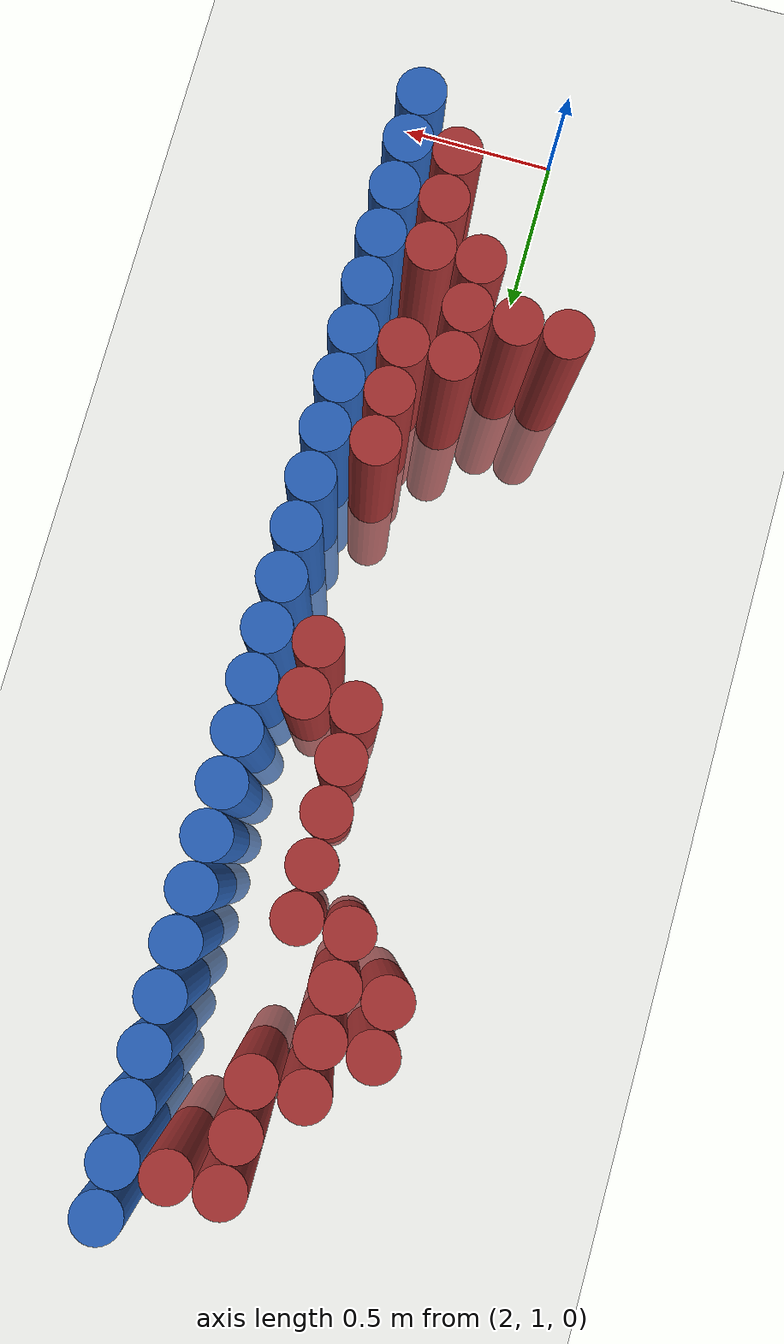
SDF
<sdf version="1.6">
 <world name="default">
  <model name="ground_plane">
   <static>1</static>
   <link name="link">
    <collision name="collision">
     <geometry><plane><normal>0 0 1</normal><size>100 100</size></plane></geometry>
     <surface><friction><ode><mu>100</mu><mu2>50</mu2></ode></friction></surface>
    </collision>
    <visual name="visual">
     <cast_shadows>0</cast_shadows>
     <geometry><plane><normal>0 0 1</normal><size>100 100</size></plane></geometry>
     <material>
      <script><uri>file://media/materials/scripts/gazebo.material</uri><name>Gazebo/Grey</name></script>
     </material>
    </visual>
   </link>
  </model>
  <model name="unit_cylinder_235">
   <static>1</static>
   <pose>1.825000 1.825000 0.000000 0.000000 0.000000 0.000000</pose>
   <link name="link">
    <inertial>
     <mass>1</mass>
     <inertia><ixx>0.145833</ixx><ixy>0</ixy><ixz>0</ixz><iyy>0.145833</iyy><iyz>0</iyz><izz>0.125</izz></inertia>
    </inertial>
    <collision name="collision">
     <geometry><cylinder><radius>0.075000</radius><length>1.5</length></cylinder></geometry>
    </collision>
    <visual name="visual">
     <geometry><cylinder><radius>0.075000</radius><length>1.5</length></cylinder></geometry>
     <material>
      <ambient>0.648000 0.192000 0.192000 1</ambient>
      <diffuse>0.648000 0.192000 0.192000 1</diffuse>
     </material>
     <material>
      <script><name>Gazebo/Grey</name><uri>file://media/materials/scripts/gazebo.material</uri></script>
     </material>
    </visual>
   </link>
  </model>
  <model name="unit_cylinder_236">
   <static>1</static>
   <pose>1.825000 3.775000 0.000000 0.000000 0.000000 0.000000</pose>
   <link name="link">
    <inertial>
     <mass>1</mass>
     <inertia><ixx>0.145833</ixx><ixy>0</ixy><ixz>0</ixz><iyy>0.145833</iyy><iyz>0</iyz><izz>0.125</izz></inertia>
    </inertial>
    <collision name="collision">
     <geometry><cylinder><radius>0.075000</radius><length>1.5</length></cylinder></geometry>
    </collision>
    <visual name="visual">
     <geometry><cylinder><radius>0.075000</radius><length>1.5</length></cylinder></geometry>
     <material>
      <ambient>0.648000 0.192000 0.192000 1</ambient>
      <diffuse>0.648000 0.192000 0.192000 1</diffuse>
     </material>
     <material>
      <script><name>Gazebo/Grey</name><uri>file://media/materials/scripts/gazebo.material</uri></script>
     </material>
    </visual>
   </link>
  </model>
  <model name="unit_cylinder_237">
   <static>1</static>
   <pose>1.825000 3.925000 0.000000 0.000000 0.000000 0.000000</pose>
   <link name="link">
    <inertial>
     <mass>1</mass>
     <inertia><ixx>0.145833</ixx><ixy>0</ixy><ixz>0</ixz><iyy>0.145833</iyy><iyz>0</iyz><izz>0.125</izz></inertia>
    </inertial>
    <collision name="collision">
     <geometry><cylinder><radius>0.075000</radius><length>1.5</length></cylinder></geometry>
    </collision>
    <visual name="visual">
     <geometry><cylinder><radius>0.075000</radius><length>1.5</length></cylinder></geometry>
     <material>
      <ambient>0.648000 0.192000 0.192000 1</ambient>
      <diffuse>0.648000 0.192000 0.192000 1</diffuse>
     </material>
     <material>
      <script><name>Gazebo/Grey</name><uri>file://media/materials/scripts/gazebo.material</uri></script>
     </material>
    </visual>
   </link>
  </model>
  <model name="unit_cylinder_242">
   <static>1</static>
   <pose>1.975000 1.825000 0.000000 0.000000 0.000000 0.000000</pose>
   <link name="link">
    <inertial>
     <mass>1</mass>
     <inertia><ixx>0.145833</ixx><ixy>0</ixy><ixz>0</ixz><iyy>0.145833</iyy><iyz>0</iyz><izz>0.125</izz></inertia>
    </inertial>
    <collision name="collision">
     <geometry><cylinder><radius>0.075000</radius><length>1.5</length></cylinder></geometry>
    </collision>
    <visual name="visual">
     <geometry><cylinder><radius>0.075000</radius><length>1.5</length></cylinder></geometry>
     <material>
      <ambient>0.648000 0.192000 0.192000 1</ambient>
      <diffuse>0.648000 0.192000 0.192000 1</diffuse>
     </material>
     <material>
      <script><name>Gazebo/Grey</name><uri>file://media/materials/scripts/gazebo.material</uri></script>
     </material>
    </visual>
   </link>
  </model>
  <model name="unit_cylinder_243">
   <static>1</static>
   <pose>1.975000 3.625000 0.000000 0.000000 0.000000 0.000000</pose>
   <link name="link">
    <inertial>
     <mass>1</mass>
     <inertia><ixx>0.145833</ixx><ixy>0</ixy><ixz>0</ixz><iyy>0.145833</iyy><iyz>0</iyz><izz>0.125</izz></inertia>
    </inertial>
    <collision name="collision">
     <geometry><cylinder><radius>0.075000</radius><length>1.5</length></cylinder></geometry>
    </collision>
    <visual name="visual">
     <geometry><cylinder><radius>0.075000</radius><length>1.5</length></cylinder></geometry>
     <material>
      <ambient>0.648000 0.192000 0.192000 1</ambient>
      <diffuse>0.648000 0.192000 0.192000 1</diffuse>
     </material>
     <material>
      <script><name>Gazebo/Grey</name><uri>file://media/materials/scripts/gazebo.material</uri></script>
     </material>
    </visual>
   </link>
  </model>
  <model name="unit_cylinder_244">
   <static>1</static>
   <pose>1.975000 3.775000 0.000000 0.000000 0.000000 0.000000</pose>
   <link name="link">
    <inertial>
     <mass>1</mass>
     <inertia><ixx>0.145833</ixx><ixy>0</ixy><ixz>0</ixz><iyy>0.145833</iyy><iyz>0</iyz><izz>0.125</izz></inertia>
    </inertial>
    <collision name="collision">
     <geometry><cylinder><radius>0.075000</radius><length>1.5</length></cylinder></geometry>
    </collision>
    <visual name="visual">
     <geometry><cylinder><radius>0.075000</radius><length>1.5</length></cylinder></geometry>
     <material>
      <ambient>0.648000 0.192000 0.192000 1</ambient>
      <diffuse>0.648000 0.192000 0.192000 1</diffuse>
     </material>
     <material>
      <script><name>Gazebo/Grey</name><uri>file://media/materials/scripts/gazebo.material</uri></script>
     </material>
    </visual>
   </link>
  </model>
  <model name="unit_cylinder_245">
   <static>1</static>
   <pose>1.975000 3.925000 0.000000 0.000000 0.000000 0.000000</pose>
   <link name="link">
    <inertial>
     <mass>1</mass>
     <inertia><ixx>0.145833</ixx><ixy>0</ixy><ixz>0</ixz><iyy>0.145833</iyy><iyz>0</iyz><izz>0.125</izz></inertia>
    </inertial>
    <collision name="collision">
     <geometry><cylinder><radius>0.075000</radius><length>1.5</length></cylinder></geometry>
    </collision>
    <visual name="visual">
     <geometry><cylinder><radius>0.075000</radius><length>1.5</length></cylinder></geometry>
     <material>
      <ambient>0.648000 0.192000 0.192000 1</ambient>
      <diffuse>0.648000 0.192000 0.192000 1</diffuse>
     </material>
     <material>
      <script><name>Gazebo/Grey</name><uri>file://media/materials/scripts/gazebo.material</uri></script>
     </material>
    </visual>
   </link>
  </model>
  <model name="unit_cylinder_246">
   <static>1</static>
   <pose>1.975000 4.075000 0.000000 0.000000 0.000000 0.000000</pose>
   <link name="link">
    <inertial>
     <mass>1</mass>
     <inertia><ixx>0.145833</ixx><ixy>0</ixy><ixz>0</ixz><iyy>0.145833</iyy><iyz>0</iyz><izz>0.125</izz></inertia>
    </inertial>
    <collision name="collision">
     <geometry><cylinder><radius>0.075000</radius><length>1.5</length></cylinder></geometry>
    </collision>
    <visual name="visual">
     <geometry><cylinder><radius>0.075000</radius><length>1.5</length></cylinder></geometry>
     <material>
      <ambient>0.648000 0.192000 0.192000 1</ambient>
      <diffuse>0.648000 0.192000 0.192000 1</diffuse>
     </material>
     <material>
      <script><name>Gazebo/Grey</name><uri>file://media/materials/scripts/gazebo.material</uri></script>
     </material>
    </visual>
   </link>
  </model>
  <model name="unit_cylinder_250">
   <static>1</static>
   <pose>2.125000 1.675000 0.000000 0.000000 0.000000 0.000000</pose>
   <link name="link">
    <inertial>
     <mass>1</mass>
     <inertia><ixx>0.145833</ixx><ixy>0</ixy><ixz>0</ixz><iyy>0.145833</iyy><iyz>0</iyz><izz>0.125</izz></inertia>
    </inertial>
    <collision name="collision">
     <geometry><cylinder><radius>0.075000</radius><length>1.5</length></cylinder></geometry>
    </collision>
    <visual name="visual">
     <geometry><cylinder><radius>0.075000</radius><length>1.5</length></cylinder></geometry>
     <material>
      <ambient>0.648000 0.192000 0.192000 1</ambient>
      <diffuse>0.648000 0.192000 0.192000 1</diffuse>
     </material>
     <material>
      <script><name>Gazebo/Grey</name><uri>file://media/materials/scripts/gazebo.material</uri></script>
     </material>
    </visual>
   </link>
  </model>
  <model name="unit_cylinder_251">
   <static>1</static>
   <pose>2.125000 1.825000 0.000000 0.000000 0.000000 0.000000</pose>
   <link name="link">
    <inertial>
     <mass>1</mass>
     <inertia><ixx>0.145833</ixx><ixy>0</ixy><ixz>0</ixz><iyy>0.145833</iyy><iyz>0</iyz><izz>0.125</izz></inertia>
    </inertial>
    <collision name="collision">
     <geometry><cylinder><radius>0.075000</radius><length>1.5</length></cylinder></geometry>
    </collision>
    <visual name="visual">
     <geometry><cylinder><radius>0.075000</radius><length>1.5</length></cylinder></geometry>
     <material>
      <ambient>0.648000 0.192000 0.192000 1</ambient>
      <diffuse>0.648000 0.192000 0.192000 1</diffuse>
     </material>
     <material>
      <script><name>Gazebo/Grey</name><uri>file://media/materials/scripts/gazebo.material</uri></script>
     </material>
    </visual>
   </link>
  </model>
  <model name="unit_cylinder_252">
   <static>1</static>
   <pose>2.125000 1.975000 0.000000 0.000000 0.000000 0.000000</pose>
   <link name="link">
    <inertial>
     <mass>1</mass>
     <inertia><ixx>0.145833</ixx><ixy>0</ixy><ixz>0</ixz><iyy>0.145833</iyy><iyz>0</iyz><izz>0.125</izz></inertia>
    </inertial>
    <collision name="collision">
     <geometry><cylinder><radius>0.075000</radius><length>1.5</length></cylinder></geometry>
    </collision>
    <visual name="visual">
     <geometry><cylinder><radius>0.075000</radius><length>1.5</length></cylinder></geometry>
     <material>
      <ambient>0.648000 0.192000 0.192000 1</ambient>
      <diffuse>0.648000 0.192000 0.192000 1</diffuse>
     </material>
     <material>
      <script><name>Gazebo/Grey</name><uri>file://media/materials/scripts/gazebo.material</uri></script>
     </material>
    </visual>
   </link>
  </model>
  <model name="unit_cylinder_253">
   <static>1</static>
   <pose>2.125000 3.025000 0.000000 0.000000 0.000000 0.000000</pose>
   <link name="link">
    <inertial>
     <mass>1</mass>
     <inertia><ixx>0.145833</ixx><ixy>0</ixy><ixz>0</ixz><iyy>0.145833</iyy><iyz>0</iyz><izz>0.125</izz></inertia>
    </inertial>
    <collision name="collision">
     <geometry><cylinder><radius>0.075000</radius><length>1.5</length></cylinder></geometry>
    </collision>
    <visual name="visual">
     <geometry><cylinder><radius>0.075000</radius><length>1.5</length></cylinder></geometry>
     <material>
      <ambient>0.648000 0.192000 0.192000 1</ambient>
      <diffuse>0.648000 0.192000 0.192000 1</diffuse>
     </material>
     <material>
      <script><name>Gazebo/Grey</name><uri>file://media/materials/scripts/gazebo.material</uri></script>
     </material>
    </visual>
   </link>
  </model>
  <model name="unit_cylinder_254">
   <static>1</static>
   <pose>2.125000 3.175000 0.000000 0.000000 0.000000 0.000000</pose>
   <link name="link">
    <inertial>
     <mass>1</mass>
     <inertia><ixx>0.145833</ixx><ixy>0</ixy><ixz>0</ixz><iyy>0.145833</iyy><iyz>0</iyz><izz>0.125</izz></inertia>
    </inertial>
    <collision name="collision">
     <geometry><cylinder><radius>0.075000</radius><length>1.5</length></cylinder></geometry>
    </collision>
    <visual name="visual">
     <geometry><cylinder><radius>0.075000</radius><length>1.5</length></cylinder></geometry>
     <material>
      <ambient>0.648000 0.192000 0.192000 1</ambient>
      <diffuse>0.648000 0.192000 0.192000 1</diffuse>
     </material>
     <material>
      <script><name>Gazebo/Grey</name><uri>file://media/materials/scripts/gazebo.material</uri></script>
     </material>
    </visual>
   </link>
  </model>
  <model name="unit_cylinder_255">
   <static>1</static>
   <pose>2.125000 3.325000 0.000000 0.000000 0.000000 0.000000</pose>
   <link name="link">
    <inertial>
     <mass>1</mass>
     <inertia><ixx>0.145833</ixx><ixy>0</ixy><ixz>0</ixz><iyy>0.145833</iyy><iyz>0</iyz><izz>0.125</izz></inertia>
    </inertial>
    <collision name="collision">
     <geometry><cylinder><radius>0.075000</radius><length>1.5</length></cylinder></geometry>
    </collision>
    <visual name="visual">
     <geometry><cylinder><radius>0.075000</radius><length>1.5</length></cylinder></geometry>
     <material>
      <ambient>0.648000 0.192000 0.192000 1</ambient>
      <diffuse>0.648000 0.192000 0.192000 1</diffuse>
     </material>
     <material>
      <script><name>Gazebo/Grey</name><uri>file://media/materials/scripts/gazebo.material</uri></script>
     </material>
    </visual>
   </link>
  </model>
  <model name="unit_cylinder_256">
   <static>1</static>
   <pose>2.125000 3.475000 0.000000 0.000000 0.000000 0.000000</pose>
   <link name="link">
    <inertial>
     <mass>1</mass>
     <inertia><ixx>0.145833</ixx><ixy>0</ixy><ixz>0</ixz><iyy>0.145833</iyy><iyz>0</iyz><izz>0.125</izz></inertia>
    </inertial>
    <collision name="collision">
     <geometry><cylinder><radius>0.075000</radius><length>1.5</length></cylinder></geometry>
    </collision>
    <visual name="visual">
     <geometry><cylinder><radius>0.075000</radius><length>1.5</length></cylinder></geometry>
     <material>
      <ambient>0.648000 0.192000 0.192000 1</ambient>
      <diffuse>0.648000 0.192000 0.192000 1</diffuse>
     </material>
     <material>
      <script><name>Gazebo/Grey</name><uri>file://media/materials/scripts/gazebo.material</uri></script>
     </material>
    </visual>
   </link>
  </model>
  <model name="unit_cylinder_257">
   <static>1</static>
   <pose>2.125000 3.625000 0.000000 0.000000 0.000000 0.000000</pose>
   <link name="link">
    <inertial>
     <mass>1</mass>
     <inertia><ixx>0.145833</ixx><ixy>0</ixy><ixz>0</ixz><iyy>0.145833</iyy><iyz>0</iyz><izz>0.125</izz></inertia>
    </inertial>
    <collision name="collision">
     <geometry><cylinder><radius>0.075000</radius><length>1.5</length></cylinder></geometry>
    </collision>
    <visual name="visual">
     <geometry><cylinder><radius>0.075000</radius><length>1.5</length></cylinder></geometry>
     <material>
      <ambient>0.648000 0.192000 0.192000 1</ambient>
      <diffuse>0.648000 0.192000 0.192000 1</diffuse>
     </material>
     <material>
      <script><name>Gazebo/Grey</name><uri>file://media/materials/scripts/gazebo.material</uri></script>
     </material>
    </visual>
   </link>
  </model>
  <model name="unit_cylinder_258">
   <static>1</static>
   <pose>2.125000 4.075000 0.000000 0.000000 0.000000 0.000000</pose>
   <link name="link">
    <inertial>
     <mass>1</mass>
     <inertia><ixx>0.145833</ixx><ixy>0</ixy><ixz>0</ixz><iyy>0.145833</iyy><iyz>0</iyz><izz>0.125</izz></inertia>
    </inertial>
    <collision name="collision">
     <geometry><cylinder><radius>0.075000</radius><length>1.5</length></cylinder></geometry>
    </collision>
    <visual name="visual">
     <geometry><cylinder><radius>0.075000</radius><length>1.5</length></cylinder></geometry>
     <material>
      <ambient>0.648000 0.192000 0.192000 1</ambient>
      <diffuse>0.648000 0.192000 0.192000 1</diffuse>
     </material>
     <material>
      <script><name>Gazebo/Grey</name><uri>file://media/materials/scripts/gazebo.material</uri></script>
     </material>
    </visual>
   </link>
  </model>
  <model name="unit_cylinder_259">
   <static>1</static>
   <pose>2.125000 4.225000 0.000000 0.000000 0.000000 0.000000</pose>
   <link name="link">
    <inertial>
     <mass>1</mass>
     <inertia><ixx>0.145833</ixx><ixy>0</ixy><ixz>0</ixz><iyy>0.145833</iyy><iyz>0</iyz><izz>0.125</izz></inertia>
    </inertial>
    <collision name="collision">
     <geometry><cylinder><radius>0.075000</radius><length>1.5</length></cylinder></geometry>
    </collision>
    <visual name="visual">
     <geometry><cylinder><radius>0.075000</radius><length>1.5</length></cylinder></geometry>
     <material>
      <ambient>0.648000 0.192000 0.192000 1</ambient>
      <diffuse>0.648000 0.192000 0.192000 1</diffuse>
     </material>
     <material>
      <script><name>Gazebo/Grey</name><uri>file://media/materials/scripts/gazebo.material</uri></script>
     </material>
    </visual>
   </link>
  </model>
  <model name="unit_cylinder_260">
   <static>1</static>
   <pose>2.125000 4.375000 0.000000 0.000000 0.000000 0.000000</pose>
   <link name="link">
    <inertial>
     <mass>1</mass>
     <inertia><ixx>0.145833</ixx><ixy>0</ixy><ixz>0</ixz><iyy>0.145833</iyy><iyz>0</iyz><izz>0.125</izz></inertia>
    </inertial>
    <collision name="collision">
     <geometry><cylinder><radius>0.075000</radius><length>1.5</length></cylinder></geometry>
    </collision>
    <visual name="visual">
     <geometry><cylinder><radius>0.075000</radius><length>1.5</length></cylinder></geometry>
     <material>
      <ambient>0.648000 0.192000 0.192000 1</ambient>
      <diffuse>0.648000 0.192000 0.192000 1</diffuse>
     </material>
     <material>
      <script><name>Gazebo/Grey</name><uri>file://media/materials/scripts/gazebo.material</uri></script>
     </material>
    </visual>
   </link>
  </model>
  <model name="unit_cylinder_265">
   <static>1</static>
   <pose>2.275000 1.375000 0.000000 0.000000 0.000000 0.000000</pose>
   <link name="link">
    <inertial>
     <mass>1</mass>
     <inertia><ixx>0.145833</ixx><ixy>0</ixy><ixz>0</ixz><iyy>0.145833</iyy><iyz>0</iyz><izz>0.125</izz></inertia>
    </inertial>
    <collision name="collision">
     <geometry><cylinder><radius>0.075000</radius><length>1.5</length></cylinder></geometry>
    </collision>
    <visual name="visual">
     <geometry><cylinder><radius>0.075000</radius><length>1.5</length></cylinder></geometry>
     <material>
      <ambient>0.648000 0.192000 0.192000 1</ambient>
      <diffuse>0.648000 0.192000 0.192000 1</diffuse>
     </material>
     <material>
      <script><name>Gazebo/Grey</name><uri>file://media/materials/scripts/gazebo.material</uri></script>
     </material>
    </visual>
   </link>
  </model>
  <model name="unit_cylinder_266">
   <static>1</static>
   <pose>2.275000 1.525000 0.000000 0.000000 0.000000 0.000000</pose>
   <link name="link">
    <inertial>
     <mass>1</mass>
     <inertia><ixx>0.145833</ixx><ixy>0</ixy><ixz>0</ixz><iyy>0.145833</iyy><iyz>0</iyz><izz>0.125</izz></inertia>
    </inertial>
    <collision name="collision">
     <geometry><cylinder><radius>0.075000</radius><length>1.5</length></cylinder></geometry>
    </collision>
    <visual name="visual">
     <geometry><cylinder><radius>0.075000</radius><length>1.5</length></cylinder></geometry>
     <material>
      <ambient>0.648000 0.192000 0.192000 1</ambient>
      <diffuse>0.648000 0.192000 0.192000 1</diffuse>
     </material>
     <material>
      <script><name>Gazebo/Grey</name><uri>file://media/materials/scripts/gazebo.material</uri></script>
     </material>
    </visual>
   </link>
  </model>
  <model name="unit_cylinder_267">
   <static>1</static>
   <pose>2.275000 1.675000 0.000000 0.000000 0.000000 0.000000</pose>
   <link name="link">
    <inertial>
     <mass>1</mass>
     <inertia><ixx>0.145833</ixx><ixy>0</ixy><ixz>0</ixz><iyy>0.145833</iyy><iyz>0</iyz><izz>0.125</izz></inertia>
    </inertial>
    <collision name="collision">
     <geometry><cylinder><radius>0.075000</radius><length>1.5</length></cylinder></geometry>
    </collision>
    <visual name="visual">
     <geometry><cylinder><radius>0.075000</radius><length>1.5</length></cylinder></geometry>
     <material>
      <ambient>0.648000 0.192000 0.192000 1</ambient>
      <diffuse>0.648000 0.192000 0.192000 1</diffuse>
     </material>
     <material>
      <script><name>Gazebo/Grey</name><uri>file://media/materials/scripts/gazebo.material</uri></script>
     </material>
    </visual>
   </link>
  </model>
  <model name="unit_cylinder_268">
   <static>1</static>
   <pose>2.275000 1.975000 0.000000 0.000000 0.000000 0.000000</pose>
   <link name="link">
    <inertial>
     <mass>1</mass>
     <inertia><ixx>0.145833</ixx><ixy>0</ixy><ixz>0</ixz><iyy>0.145833</iyy><iyz>0</iyz><izz>0.125</izz></inertia>
    </inertial>
    <collision name="collision">
     <geometry><cylinder><radius>0.075000</radius><length>1.5</length></cylinder></geometry>
    </collision>
    <visual name="visual">
     <geometry><cylinder><radius>0.075000</radius><length>1.5</length></cylinder></geometry>
     <material>
      <ambient>0.648000 0.192000 0.192000 1</ambient>
      <diffuse>0.648000 0.192000 0.192000 1</diffuse>
     </material>
     <material>
      <script><name>Gazebo/Grey</name><uri>file://media/materials/scripts/gazebo.material</uri></script>
     </material>
    </visual>
   </link>
  </model>
  <model name="unit_cylinder_269">
   <static>1</static>
   <pose>2.275000 2.125000 0.000000 0.000000 0.000000 0.000000</pose>
   <link name="link">
    <inertial>
     <mass>1</mass>
     <inertia><ixx>0.145833</ixx><ixy>0</ixy><ixz>0</ixz><iyy>0.145833</iyy><iyz>0</iyz><izz>0.125</izz></inertia>
    </inertial>
    <collision name="collision">
     <geometry><cylinder><radius>0.075000</radius><length>1.5</length></cylinder></geometry>
    </collision>
    <visual name="visual">
     <geometry><cylinder><radius>0.075000</radius><length>1.5</length></cylinder></geometry>
     <material>
      <ambient>0.648000 0.192000 0.192000 1</ambient>
      <diffuse>0.648000 0.192000 0.192000 1</diffuse>
     </material>
     <material>
      <script><name>Gazebo/Grey</name><uri>file://media/materials/scripts/gazebo.material</uri></script>
     </material>
    </visual>
   </link>
  </model>
  <model name="unit_cylinder_270">
   <static>1</static>
   <pose>2.275000 2.275000 0.000000 0.000000 0.000000 0.000000</pose>
   <link name="link">
    <inertial>
     <mass>1</mass>
     <inertia><ixx>0.145833</ixx><ixy>0</ixy><ixz>0</ixz><iyy>0.145833</iyy><iyz>0</iyz><izz>0.125</izz></inertia>
    </inertial>
    <collision name="collision">
     <geometry><cylinder><radius>0.075000</radius><length>1.5</length></cylinder></geometry>
    </collision>
    <visual name="visual">
     <geometry><cylinder><radius>0.075000</radius><length>1.5</length></cylinder></geometry>
     <material>
      <ambient>0.648000 0.192000 0.192000 1</ambient>
      <diffuse>0.648000 0.192000 0.192000 1</diffuse>
     </material>
     <material>
      <script><name>Gazebo/Grey</name><uri>file://media/materials/scripts/gazebo.material</uri></script>
     </material>
    </visual>
   </link>
  </model>
  <model name="unit_cylinder_271">
   <static>1</static>
   <pose>2.275000 2.875000 0.000000 0.000000 0.000000 0.000000</pose>
   <link name="link">
    <inertial>
     <mass>1</mass>
     <inertia><ixx>0.145833</ixx><ixy>0</ixy><ixz>0</ixz><iyy>0.145833</iyy><iyz>0</iyz><izz>0.125</izz></inertia>
    </inertial>
    <collision name="collision">
     <geometry><cylinder><radius>0.075000</radius><length>1.5</length></cylinder></geometry>
    </collision>
    <visual name="visual">
     <geometry><cylinder><radius>0.075000</radius><length>1.5</length></cylinder></geometry>
     <material>
      <ambient>0.648000 0.192000 0.192000 1</ambient>
      <diffuse>0.648000 0.192000 0.192000 1</diffuse>
     </material>
     <material>
      <script><name>Gazebo/Grey</name><uri>file://media/materials/scripts/gazebo.material</uri></script>
     </material>
    </visual>
   </link>
  </model>
  <model name="unit_cylinder_272">
   <static>1</static>
   <pose>2.275000 3.025000 0.000000 0.000000 0.000000 0.000000</pose>
   <link name="link">
    <inertial>
     <mass>1</mass>
     <inertia><ixx>0.145833</ixx><ixy>0</ixy><ixz>0</ixz><iyy>0.145833</iyy><iyz>0</iyz><izz>0.125</izz></inertia>
    </inertial>
    <collision name="collision">
     <geometry><cylinder><radius>0.075000</radius><length>1.5</length></cylinder></geometry>
    </collision>
    <visual name="visual">
     <geometry><cylinder><radius>0.075000</radius><length>1.5</length></cylinder></geometry>
     <material>
      <ambient>0.648000 0.192000 0.192000 1</ambient>
      <diffuse>0.648000 0.192000 0.192000 1</diffuse>
     </material>
     <material>
      <script><name>Gazebo/Grey</name><uri>file://media/materials/scripts/gazebo.material</uri></script>
     </material>
    </visual>
   </link>
  </model>
  <model name="unit_cylinder_273">
   <static>1</static>
   <pose>2.275000 4.375000 0.000000 0.000000 0.000000 0.000000</pose>
   <link name="link">
    <inertial>
     <mass>1</mass>
     <inertia><ixx>0.145833</ixx><ixy>0</ixy><ixz>0</ixz><iyy>0.145833</iyy><iyz>0</iyz><izz>0.125</izz></inertia>
    </inertial>
    <collision name="collision">
     <geometry><cylinder><radius>0.075000</radius><length>1.5</length></cylinder></geometry>
    </collision>
    <visual name="visual">
     <geometry><cylinder><radius>0.075000</radius><length>1.5</length></cylinder></geometry>
     <material>
      <ambient>0.648000 0.192000 0.192000 1</ambient>
      <diffuse>0.648000 0.192000 0.192000 1</diffuse>
     </material>
     <material>
      <script><name>Gazebo/Grey</name><uri>file://media/materials/scripts/gazebo.material</uri></script>
     </material>
    </visual>
   </link>
  </model>
  <model name="unit_cylinder_281">
   <static>1</static>
   <pose>2.425000 1.225000 0.000000 0.000000 0.000000 0.000000</pose>
   <link name="link">
    <inertial>
     <mass>1</mass>
     <inertia><ixx>0.145833</ixx><ixy>0</ixy><ixz>0</ixz><iyy>0.145833</iyy><iyz>0</iyz><izz>0.125</izz></inertia>
    </inertial>
    <collision name="collision">
     <geometry><cylinder><radius>0.075000</radius><length>1.5</length></cylinder></geometry>
    </collision>
    <visual name="visual">
     <geometry><cylinder><radius>0.075000</radius><length>1.5</length></cylinder></geometry>
     <material>
      <ambient>0.152000 0.379000 0.720000 1</ambient>
      <diffuse>0.152000 0.379000 0.720000 1</diffuse>
     </material>
     <material>
      <script><name>Gazebo/Grey</name><uri>file://media/materials/scripts/gazebo.material</uri></script>
     </material>
    </visual>
   </link>
  </model>
  <model name="unit_cylinder_282">
   <static>1</static>
   <pose>2.425000 1.375000 0.000000 0.000000 0.000000 0.000000</pose>
   <link name="link">
    <inertial>
     <mass>1</mass>
     <inertia><ixx>0.145833</ixx><ixy>0</ixy><ixz>0</ixz><iyy>0.145833</iyy><iyz>0</iyz><izz>0.125</izz></inertia>
    </inertial>
    <collision name="collision">
     <geometry><cylinder><radius>0.075000</radius><length>1.5</length></cylinder></geometry>
    </collision>
    <visual name="visual">
     <geometry><cylinder><radius>0.075000</radius><length>1.5</length></cylinder></geometry>
     <material>
      <ambient>0.152000 0.379000 0.720000 1</ambient>
      <diffuse>0.152000 0.379000 0.720000 1</diffuse>
     </material>
     <material>
      <script><name>Gazebo/Grey</name><uri>file://media/materials/scripts/gazebo.material</uri></script>
     </material>
    </visual>
   </link>
  </model>
  <model name="unit_cylinder_283">
   <static>1</static>
   <pose>2.425000 1.525000 0.000000 0.000000 0.000000 0.000000</pose>
   <link name="link">
    <inertial>
     <mass>1</mass>
     <inertia><ixx>0.145833</ixx><ixy>0</ixy><ixz>0</ixz><iyy>0.145833</iyy><iyz>0</iyz><izz>0.125</izz></inertia>
    </inertial>
    <collision name="collision">
     <geometry><cylinder><radius>0.075000</radius><length>1.5</length></cylinder></geometry>
    </collision>
    <visual name="visual">
     <geometry><cylinder><radius>0.075000</radius><length>1.5</length></cylinder></geometry>
     <material>
      <ambient>0.152000 0.379000 0.720000 1</ambient>
      <diffuse>0.152000 0.379000 0.720000 1</diffuse>
     </material>
     <material>
      <script><name>Gazebo/Grey</name><uri>file://media/materials/scripts/gazebo.material</uri></script>
     </material>
    </visual>
   </link>
  </model>
  <model name="unit_cylinder_284">
   <static>1</static>
   <pose>2.425000 1.675000 0.000000 0.000000 0.000000 0.000000</pose>
   <link name="link">
    <inertial>
     <mass>1</mass>
     <inertia><ixx>0.145833</ixx><ixy>0</ixy><ixz>0</ixz><iyy>0.145833</iyy><iyz>0</iyz><izz>0.125</izz></inertia>
    </inertial>
    <collision name="collision">
     <geometry><cylinder><radius>0.075000</radius><length>1.5</length></cylinder></geometry>
    </collision>
    <visual name="visual">
     <geometry><cylinder><radius>0.075000</radius><length>1.5</length></cylinder></geometry>
     <material>
      <ambient>0.152000 0.379000 0.720000 1</ambient>
      <diffuse>0.152000 0.379000 0.720000 1</diffuse>
     </material>
     <material>
      <script><name>Gazebo/Grey</name><uri>file://media/materials/scripts/gazebo.material</uri></script>
     </material>
    </visual>
   </link>
  </model>
  <model name="unit_cylinder_285">
   <static>1</static>
   <pose>2.425000 1.825000 0.000000 0.000000 0.000000 0.000000</pose>
   <link name="link">
    <inertial>
     <mass>1</mass>
     <inertia><ixx>0.145833</ixx><ixy>0</ixy><ixz>0</ixz><iyy>0.145833</iyy><iyz>0</iyz><izz>0.125</izz></inertia>
    </inertial>
    <collision name="collision">
     <geometry><cylinder><radius>0.075000</radius><length>1.5</length></cylinder></geometry>
    </collision>
    <visual name="visual">
     <geometry><cylinder><radius>0.075000</radius><length>1.5</length></cylinder></geometry>
     <material>
      <ambient>0.152000 0.379000 0.720000 1</ambient>
      <diffuse>0.152000 0.379000 0.720000 1</diffuse>
     </material>
     <material>
      <script><name>Gazebo/Grey</name><uri>file://media/materials/scripts/gazebo.material</uri></script>
     </material>
    </visual>
   </link>
  </model>
  <model name="unit_cylinder_286">
   <static>1</static>
   <pose>2.425000 1.975000 0.000000 0.000000 0.000000 0.000000</pose>
   <link name="link">
    <inertial>
     <mass>1</mass>
     <inertia><ixx>0.145833</ixx><ixy>0</ixy><ixz>0</ixz><iyy>0.145833</iyy><iyz>0</iyz><izz>0.125</izz></inertia>
    </inertial>
    <collision name="collision">
     <geometry><cylinder><radius>0.075000</radius><length>1.5</length></cylinder></geometry>
    </collision>
    <visual name="visual">
     <geometry><cylinder><radius>0.075000</radius><length>1.5</length></cylinder></geometry>
     <material>
      <ambient>0.152000 0.379000 0.720000 1</ambient>
      <diffuse>0.152000 0.379000 0.720000 1</diffuse>
     </material>
     <material>
      <script><name>Gazebo/Grey</name><uri>file://media/materials/scripts/gazebo.material</uri></script>
     </material>
    </visual>
   </link>
  </model>
  <model name="unit_cylinder_287">
   <static>1</static>
   <pose>2.425000 2.125000 0.000000 0.000000 0.000000 0.000000</pose>
   <link name="link">
    <inertial>
     <mass>1</mass>
     <inertia><ixx>0.145833</ixx><ixy>0</ixy><ixz>0</ixz><iyy>0.145833</iyy><iyz>0</iyz><izz>0.125</izz></inertia>
    </inertial>
    <collision name="collision">
     <geometry><cylinder><radius>0.075000</radius><length>1.5</length></cylinder></geometry>
    </collision>
    <visual name="visual">
     <geometry><cylinder><radius>0.075000</radius><length>1.5</length></cylinder></geometry>
     <material>
      <ambient>0.152000 0.379000 0.720000 1</ambient>
      <diffuse>0.152000 0.379000 0.720000 1</diffuse>
     </material>
     <material>
      <script><name>Gazebo/Grey</name><uri>file://media/materials/scripts/gazebo.material</uri></script>
     </material>
    </visual>
   </link>
  </model>
  <model name="unit_cylinder_288">
   <static>1</static>
   <pose>2.425000 2.275000 0.000000 0.000000 0.000000 0.000000</pose>
   <link name="link">
    <inertial>
     <mass>1</mass>
     <inertia><ixx>0.145833</ixx><ixy>0</ixy><ixz>0</ixz><iyy>0.145833</iyy><iyz>0</iyz><izz>0.125</izz></inertia>
    </inertial>
    <collision name="collision">
     <geometry><cylinder><radius>0.075000</radius><length>1.5</length></cylinder></geometry>
    </collision>
    <visual name="visual">
     <geometry><cylinder><radius>0.075000</radius><length>1.5</length></cylinder></geometry>
     <material>
      <ambient>0.152000 0.379000 0.720000 1</ambient>
      <diffuse>0.152000 0.379000 0.720000 1</diffuse>
     </material>
     <material>
      <script><name>Gazebo/Grey</name><uri>file://media/materials/scripts/gazebo.material</uri></script>
     </material>
    </visual>
   </link>
  </model>
  <model name="unit_cylinder_289">
   <static>1</static>
   <pose>2.425000 2.425000 0.000000 0.000000 0.000000 0.000000</pose>
   <link name="link">
    <inertial>
     <mass>1</mass>
     <inertia><ixx>0.145833</ixx><ixy>0</ixy><ixz>0</ixz><iyy>0.145833</iyy><iyz>0</iyz><izz>0.125</izz></inertia>
    </inertial>
    <collision name="collision">
     <geometry><cylinder><radius>0.075000</radius><length>1.5</length></cylinder></geometry>
    </collision>
    <visual name="visual">
     <geometry><cylinder><radius>0.075000</radius><length>1.5</length></cylinder></geometry>
     <material>
      <ambient>0.152000 0.379000 0.720000 1</ambient>
      <diffuse>0.152000 0.379000 0.720000 1</diffuse>
     </material>
     <material>
      <script><name>Gazebo/Grey</name><uri>file://media/materials/scripts/gazebo.material</uri></script>
     </material>
    </visual>
   </link>
  </model>
  <model name="unit_cylinder_290">
   <static>1</static>
   <pose>2.425000 2.575000 0.000000 0.000000 0.000000 0.000000</pose>
   <link name="link">
    <inertial>
     <mass>1</mass>
     <inertia><ixx>0.145833</ixx><ixy>0</ixy><ixz>0</ixz><iyy>0.145833</iyy><iyz>0</iyz><izz>0.125</izz></inertia>
    </inertial>
    <collision name="collision">
     <geometry><cylinder><radius>0.075000</radius><length>1.5</length></cylinder></geometry>
    </collision>
    <visual name="visual">
     <geometry><cylinder><radius>0.075000</radius><length>1.5</length></cylinder></geometry>
     <material>
      <ambient>0.152000 0.379000 0.720000 1</ambient>
      <diffuse>0.152000 0.379000 0.720000 1</diffuse>
     </material>
     <material>
      <script><name>Gazebo/Grey</name><uri>file://media/materials/scripts/gazebo.material</uri></script>
     </material>
    </visual>
   </link>
  </model>
  <model name="unit_cylinder_291">
   <static>1</static>
   <pose>2.425000 2.725000 0.000000 0.000000 0.000000 0.000000</pose>
   <link name="link">
    <inertial>
     <mass>1</mass>
     <inertia><ixx>0.145833</ixx><ixy>0</ixy><ixz>0</ixz><iyy>0.145833</iyy><iyz>0</iyz><izz>0.125</izz></inertia>
    </inertial>
    <collision name="collision">
     <geometry><cylinder><radius>0.075000</radius><length>1.5</length></cylinder></geometry>
    </collision>
    <visual name="visual">
     <geometry><cylinder><radius>0.075000</radius><length>1.5</length></cylinder></geometry>
     <material>
      <ambient>0.152000 0.379000 0.720000 1</ambient>
      <diffuse>0.152000 0.379000 0.720000 1</diffuse>
     </material>
     <material>
      <script><name>Gazebo/Grey</name><uri>file://media/materials/scripts/gazebo.material</uri></script>
     </material>
    </visual>
   </link>
  </model>
  <model name="unit_cylinder_292">
   <static>1</static>
   <pose>2.425000 2.875000 0.000000 0.000000 0.000000 0.000000</pose>
   <link name="link">
    <inertial>
     <mass>1</mass>
     <inertia><ixx>0.145833</ixx><ixy>0</ixy><ixz>0</ixz><iyy>0.145833</iyy><iyz>0</iyz><izz>0.125</izz></inertia>
    </inertial>
    <collision name="collision">
     <geometry><cylinder><radius>0.075000</radius><length>1.5</length></cylinder></geometry>
    </collision>
    <visual name="visual">
     <geometry><cylinder><radius>0.075000</radius><length>1.5</length></cylinder></geometry>
     <material>
      <ambient>0.152000 0.379000 0.720000 1</ambient>
      <diffuse>0.152000 0.379000 0.720000 1</diffuse>
     </material>
     <material>
      <script><name>Gazebo/Grey</name><uri>file://media/materials/scripts/gazebo.material</uri></script>
     </material>
    </visual>
   </link>
  </model>
  <model name="unit_cylinder_293">
   <static>1</static>
   <pose>2.425000 3.025000 0.000000 0.000000 0.000000 0.000000</pose>
   <link name="link">
    <inertial>
     <mass>1</mass>
     <inertia><ixx>0.145833</ixx><ixy>0</ixy><ixz>0</ixz><iyy>0.145833</iyy><iyz>0</iyz><izz>0.125</izz></inertia>
    </inertial>
    <collision name="collision">
     <geometry><cylinder><radius>0.075000</radius><length>1.5</length></cylinder></geometry>
    </collision>
    <visual name="visual">
     <geometry><cylinder><radius>0.075000</radius><length>1.5</length></cylinder></geometry>
     <material>
      <ambient>0.152000 0.379000 0.720000 1</ambient>
      <diffuse>0.152000 0.379000 0.720000 1</diffuse>
     </material>
     <material>
      <script><name>Gazebo/Grey</name><uri>file://media/materials/scripts/gazebo.material</uri></script>
     </material>
    </visual>
   </link>
  </model>
  <model name="unit_cylinder_294">
   <static>1</static>
   <pose>2.425000 3.175000 0.000000 0.000000 0.000000 0.000000</pose>
   <link name="link">
    <inertial>
     <mass>1</mass>
     <inertia><ixx>0.145833</ixx><ixy>0</ixy><ixz>0</ixz><iyy>0.145833</iyy><iyz>0</iyz><izz>0.125</izz></inertia>
    </inertial>
    <collision name="collision">
     <geometry><cylinder><radius>0.075000</radius><length>1.5</length></cylinder></geometry>
    </collision>
    <visual name="visual">
     <geometry><cylinder><radius>0.075000</radius><length>1.5</length></cylinder></geometry>
     <material>
      <ambient>0.152000 0.379000 0.720000 1</ambient>
      <diffuse>0.152000 0.379000 0.720000 1</diffuse>
     </material>
     <material>
      <script><name>Gazebo/Grey</name><uri>file://media/materials/scripts/gazebo.material</uri></script>
     </material>
    </visual>
   </link>
  </model>
  <model name="unit_cylinder_295">
   <static>1</static>
   <pose>2.425000 3.325000 0.000000 0.000000 0.000000 0.000000</pose>
   <link name="link">
    <inertial>
     <mass>1</mass>
     <inertia><ixx>0.145833</ixx><ixy>0</ixy><ixz>0</ixz><iyy>0.145833</iyy><iyz>0</iyz><izz>0.125</izz></inertia>
    </inertial>
    <collision name="collision">
     <geometry><cylinder><radius>0.075000</radius><length>1.5</length></cylinder></geometry>
    </collision>
    <visual name="visual">
     <geometry><cylinder><radius>0.075000</radius><length>1.5</length></cylinder></geometry>
     <material>
      <ambient>0.152000 0.379000 0.720000 1</ambient>
      <diffuse>0.152000 0.379000 0.720000 1</diffuse>
     </material>
     <material>
      <script><name>Gazebo/Grey</name><uri>file://media/materials/scripts/gazebo.material</uri></script>
     </material>
    </visual>
   </link>
  </model>
  <model name="unit_cylinder_296">
   <static>1</static>
   <pose>2.425000 3.475000 0.000000 0.000000 0.000000 0.000000</pose>
   <link name="link">
    <inertial>
     <mass>1</mass>
     <inertia><ixx>0.145833</ixx><ixy>0</ixy><ixz>0</ixz><iyy>0.145833</iyy><iyz>0</iyz><izz>0.125</izz></inertia>
    </inertial>
    <collision name="collision">
     <geometry><cylinder><radius>0.075000</radius><length>1.5</length></cylinder></geometry>
    </collision>
    <visual name="visual">
     <geometry><cylinder><radius>0.075000</radius><length>1.5</length></cylinder></geometry>
     <material>
      <ambient>0.152000 0.379000 0.720000 1</ambient>
      <diffuse>0.152000 0.379000 0.720000 1</diffuse>
     </material>
     <material>
      <script><name>Gazebo/Grey</name><uri>file://media/materials/scripts/gazebo.material</uri></script>
     </material>
    </visual>
   </link>
  </model>
  <model name="unit_cylinder_297">
   <static>1</static>
   <pose>2.425000 3.625000 0.000000 0.000000 0.000000 0.000000</pose>
   <link name="link">
    <inertial>
     <mass>1</mass>
     <inertia><ixx>0.145833</ixx><ixy>0</ixy><ixz>0</ixz><iyy>0.145833</iyy><iyz>0</iyz><izz>0.125</izz></inertia>
    </inertial>
    <collision name="collision">
     <geometry><cylinder><radius>0.075000</radius><length>1.5</length></cylinder></geometry>
    </collision>
    <visual name="visual">
     <geometry><cylinder><radius>0.075000</radius><length>1.5</length></cylinder></geometry>
     <material>
      <ambient>0.152000 0.379000 0.720000 1</ambient>
      <diffuse>0.152000 0.379000 0.720000 1</diffuse>
     </material>
     <material>
      <script><name>Gazebo/Grey</name><uri>file://media/materials/scripts/gazebo.material</uri></script>
     </material>
    </visual>
   </link>
  </model>
  <model name="unit_cylinder_298">
   <static>1</static>
   <pose>2.425000 3.775000 0.000000 0.000000 0.000000 0.000000</pose>
   <link name="link">
    <inertial>
     <mass>1</mass>
     <inertia><ixx>0.145833</ixx><ixy>0</ixy><ixz>0</ixz><iyy>0.145833</iyy><iyz>0</iyz><izz>0.125</izz></inertia>
    </inertial>
    <collision name="collision">
     <geometry><cylinder><radius>0.075000</radius><length>1.5</length></cylinder></geometry>
    </collision>
    <visual name="visual">
     <geometry><cylinder><radius>0.075000</radius><length>1.5</length></cylinder></geometry>
     <material>
      <ambient>0.152000 0.379000 0.720000 1</ambient>
      <diffuse>0.152000 0.379000 0.720000 1</diffuse>
     </material>
     <material>
      <script><name>Gazebo/Grey</name><uri>file://media/materials/scripts/gazebo.material</uri></script>
     </material>
    </visual>
   </link>
  </model>
  <model name="unit_cylinder_299">
   <static>1</static>
   <pose>2.425000 3.925000 0.000000 0.000000 0.000000 0.000000</pose>
   <link name="link">
    <inertial>
     <mass>1</mass>
     <inertia><ixx>0.145833</ixx><ixy>0</ixy><ixz>0</ixz><iyy>0.145833</iyy><iyz>0</iyz><izz>0.125</izz></inertia>
    </inertial>
    <collision name="collision">
     <geometry><cylinder><radius>0.075000</radius><length>1.5</length></cylinder></geometry>
    </collision>
    <visual name="visual">
     <geometry><cylinder><radius>0.075000</radius><length>1.5</length></cylinder></geometry>
     <material>
      <ambient>0.152000 0.379000 0.720000 1</ambient>
      <diffuse>0.152000 0.379000 0.720000 1</diffuse>
     </material>
     <material>
      <script><name>Gazebo/Grey</name><uri>file://media/materials/scripts/gazebo.material</uri></script>
     </material>
    </visual>
   </link>
  </model>
  <model name="unit_cylinder_300">
   <static>1</static>
   <pose>2.425000 4.075000 0.000000 0.000000 0.000000 0.000000</pose>
   <link name="link">
    <inertial>
     <mass>1</mass>
     <inertia><ixx>0.145833</ixx><ixy>0</ixy><ixz>0</ixz><iyy>0.145833</iyy><iyz>0</iyz><izz>0.125</izz></inertia>
    </inertial>
    <collision name="collision">
     <geometry><cylinder><radius>0.075000</radius><length>1.5</length></cylinder></geometry>
    </collision>
    <visual name="visual">
     <geometry><cylinder><radius>0.075000</radius><length>1.5</length></cylinder></geometry>
     <material>
      <ambient>0.152000 0.379000 0.720000 1</ambient>
      <diffuse>0.152000 0.379000 0.720000 1</diffuse>
     </material>
     <material>
      <script><name>Gazebo/Grey</name><uri>file://media/materials/scripts/gazebo.material</uri></script>
     </material>
    </visual>
   </link>
  </model>
  <model name="unit_cylinder_301">
   <static>1</static>
   <pose>2.425000 4.225000 0.000000 0.000000 0.000000 0.000000</pose>
   <link name="link">
    <inertial>
     <mass>1</mass>
     <inertia><ixx>0.145833</ixx><ixy>0</ixy><ixz>0</ixz><iyy>0.145833</iyy><iyz>0</iyz><izz>0.125</izz></inertia>
    </inertial>
    <collision name="collision">
     <geometry><cylinder><radius>0.075000</radius><length>1.5</length></cylinder></geometry>
    </collision>
    <visual name="visual">
     <geometry><cylinder><radius>0.075000</radius><length>1.5</length></cylinder></geometry>
     <material>
      <ambient>0.152000 0.379000 0.720000 1</ambient>
      <diffuse>0.152000 0.379000 0.720000 1</diffuse>
     </material>
     <material>
      <script><name>Gazebo/Grey</name><uri>file://media/materials/scripts/gazebo.material</uri></script>
     </material>
    </visual>
   </link>
  </model>
  <model name="unit_cylinder_302">
   <static>1</static>
   <pose>2.425000 4.375000 0.000000 0.000000 0.000000 0.000000</pose>
   <link name="link">
    <inertial>
     <mass>1</mass>
     <inertia><ixx>0.145833</ixx><ixy>0</ixy><ixz>0</ixz><iyy>0.145833</iyy><iyz>0</iyz><izz>0.125</izz></inertia>
    </inertial>
    <collision name="collision">
     <geometry><cylinder><radius>0.075000</radius><length>1.5</length></cylinder></geometry>
    </collision>
    <visual name="visual">
     <geometry><cylinder><radius>0.075000</radius><length>1.5</length></cylinder></geometry>
     <material>
      <ambient>0.152000 0.379000 0.720000 1</ambient>
      <diffuse>0.152000 0.379000 0.720000 1</diffuse>
     </material>
     <material>
      <script><name>Gazebo/Grey</name><uri>file://media/materials/scripts/gazebo.material</uri></script>
     </material>
    </visual>
   </link>
  </model>
  <model name="unit_cylinder_303">
   <static>1</static>
   <pose>2.425000 4.525000 0.000000 0.000000 0.000000 0.000000</pose>
   <link name="link">
    <inertial>
     <mass>1</mass>
     <inertia><ixx>0.145833</ixx><ixy>0</ixy><ixz>0</ixz><iyy>0.145833</iyy><iyz>0</iyz><izz>0.125</izz></inertia>
    </inertial>
    <collision name="collision">
     <geometry><cylinder><radius>0.075000</radius><length>1.5</length></cylinder></geometry>
    </collision>
    <visual name="visual">
     <geometry><cylinder><radius>0.075000</radius><length>1.5</length></cylinder></geometry>
     <material>
      <ambient>0.152000 0.379000 0.720000 1</ambient>
      <diffuse>0.152000 0.379000 0.720000 1</diffuse>
     </material>
     <material>
      <script><name>Gazebo/Grey</name><uri>file://media/materials/scripts/gazebo.material</uri></script>
     </material>
    </visual>
   </link>
  </model>
 </world>
</sdf>
